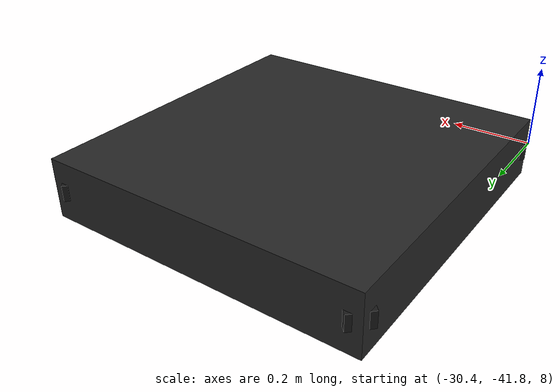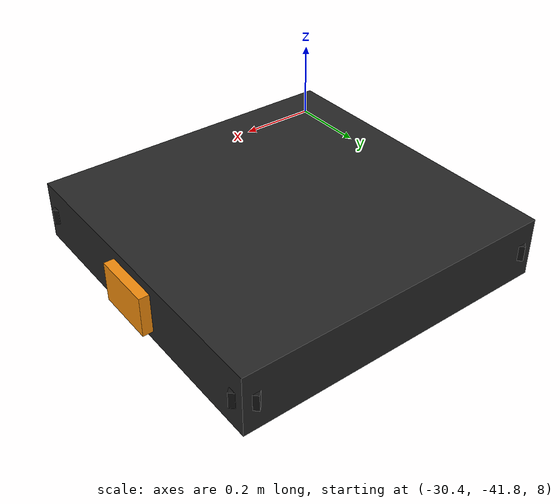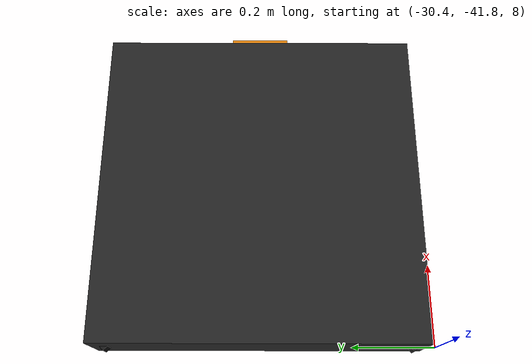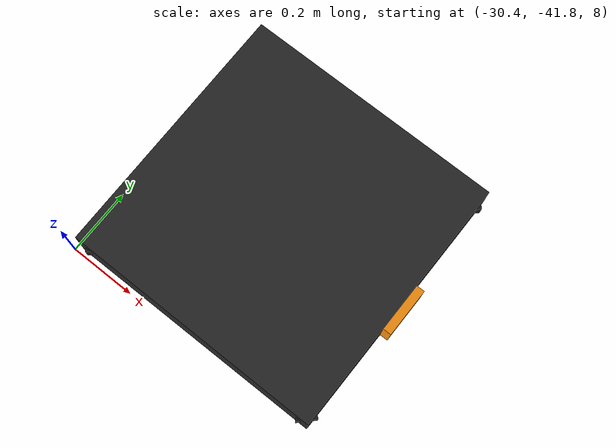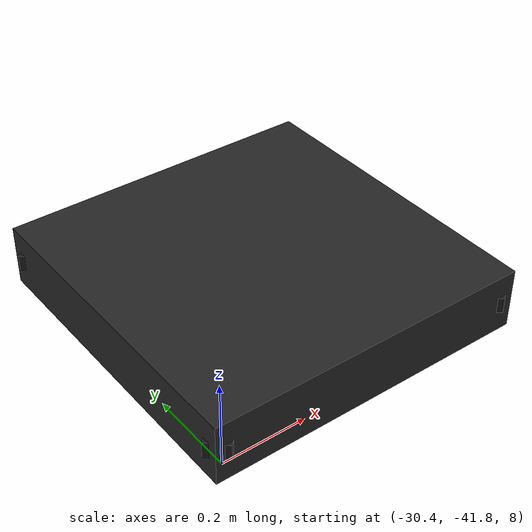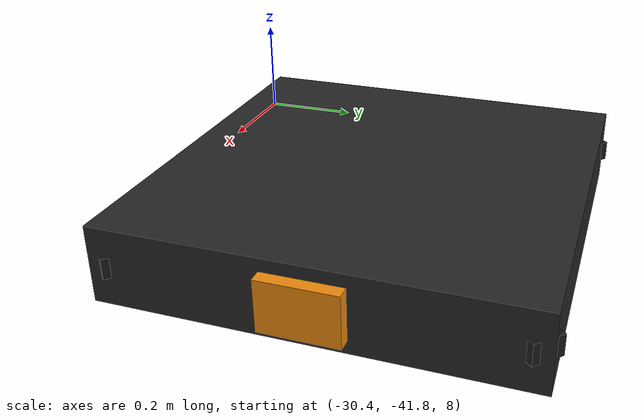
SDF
<sdf version="1.6">
 <world name="running_track">
  <include><uri>model://sun</uri></include>
  <physics type="ode">
   <max_step_size>0.004</max_step_size>
   <real_time_factor>1</real_time_factor>
   <real_time_update_rate>500</real_time_update_rate>
  </physics>
  <scene>
   <ambient>0.6 0.6 0.6 1</ambient>
   <background>0.55 0.72 0.92 1</background>
   <shadows>false</shadows>
   <sky><time>12</time><clouds><speed>2</speed><humidity>0.4</humidity></clouds></sky>
  </scene>
  <model name="chasecam">
   <pose>-44 -41.4 15 0 0.46 0</pose>
   <link name="l">
    <gravity>false</gravity>
    <kinematic>true</kinematic>
    <sensor name="chase_cam" type="camera">
     <always_on>true</always_on>
     <update_rate>30</update_rate>
     <camera>
      <horizontal_fov>1.2</horizontal_fov>
      <image><width>320</width><height>240</height><format>R8G8B8</format></image>
      <clip><near>0.1</near><far>400</far></clip>
     </camera>
    </sensor>
   </link>
  </model>
  <model name="fpv">
   <pose>-30 -41.38 8 0 0 0</pose>
   <link name="body">
    <gravity>false</gravity>
    <kinematic>true</kinematic>
    <visual name="frame">
     <geometry><box><size>0.8 0.8 0.15</size></box></geometry>
     <material><ambient>0.1 0.1 0.1 1</ambient><diffuse>0.15 0.15 0.15 1</diffuse></material>
    </visual>
    <visual name="arm1">
     <pose>0 0 0 0 0 0.785</pose>
     <geometry><box><size>1.1 0.06 0.04</size></box></geometry>
     <material><ambient>0.1 0.1 0.1 1</ambient></material>
    </visual>
    <visual name="arm2">
     <pose>0 0 0 0 0 -0.785</pose>
     <geometry><box><size>1.1 0.06 0.04</size></box></geometry>
     <material><ambient>0.1 0.1 0.1 1</ambient></material>
    </visual>
    <visual name="nose">
     <pose>0.35 0 0 0 0 0</pose>
     <geometry><box><size>0.15 0.15 0.1</size></box></geometry>
     <material><ambient>0.95 0.55 0.05 1</ambient><diffuse>0.95 0.55 0.05 1</diffuse></material>
    </visual>
    <sensor name="cam" type="camera">
     <pose>0.4 0 0 0 0.698 0</pose>
     <always_on>true</always_on>
     <update_rate>30</update_rate>
     <camera>
      <horizontal_fov>1.9199</horizontal_fov>
      <image><width>640</width><height>480</height><format>R8G8B8</format></image>
      <clip><near>0.05</near><far>400</far></clip>
     </camera>
    </sensor>
   </link>
   <plugin name="track_bridge" filename="libtrack_bridge.so">
    <camera>cam</camera>
    <chase_camera>chase_cam</chase_camera>
    <chase_model>chasecam</chase_model>
   </plugin>
  </model>
 </world>
</sdf>
